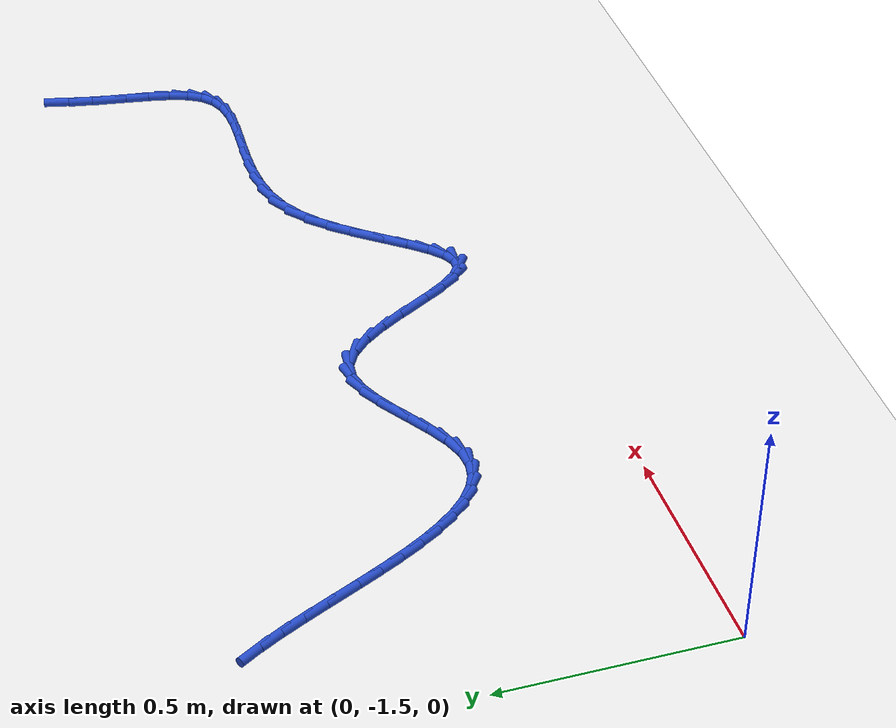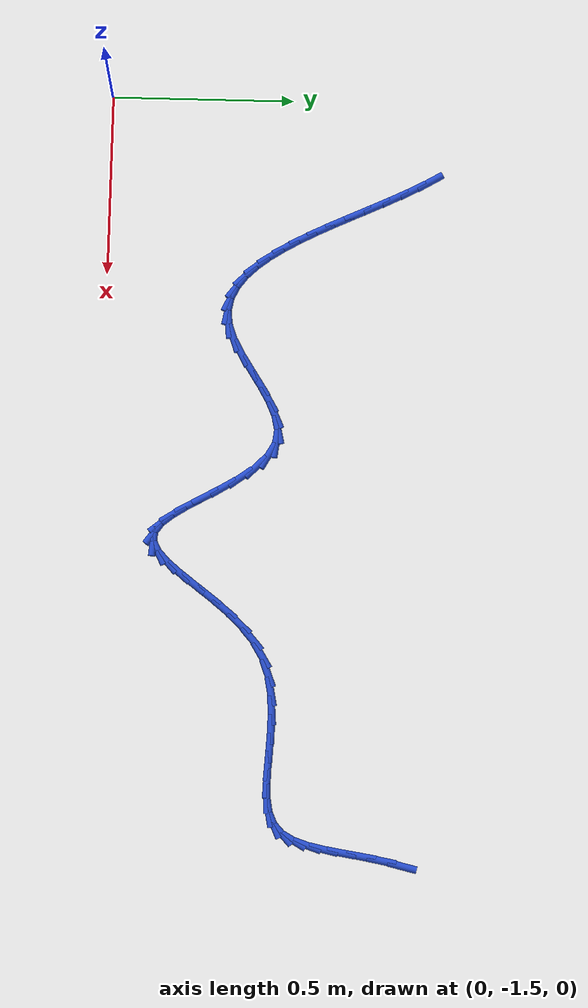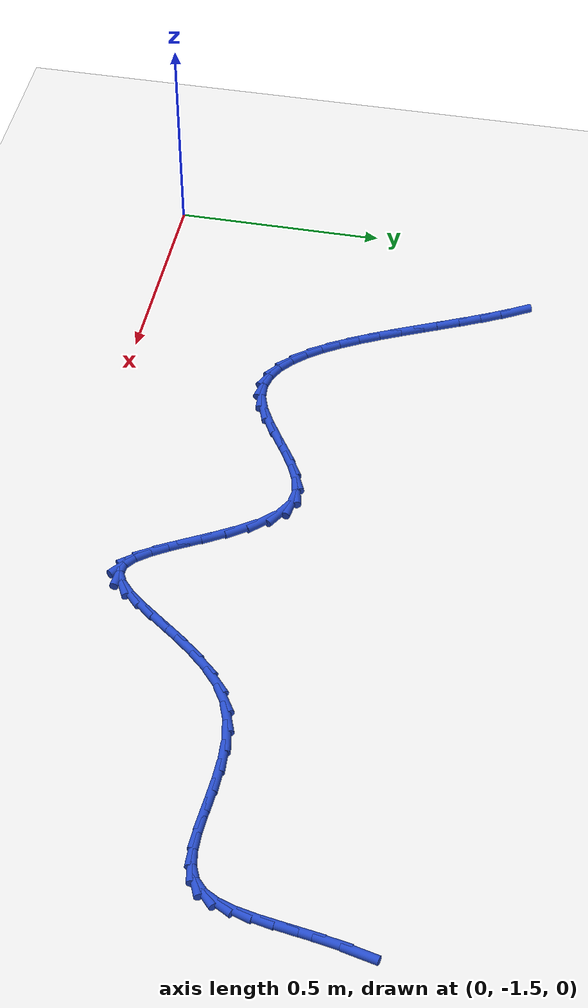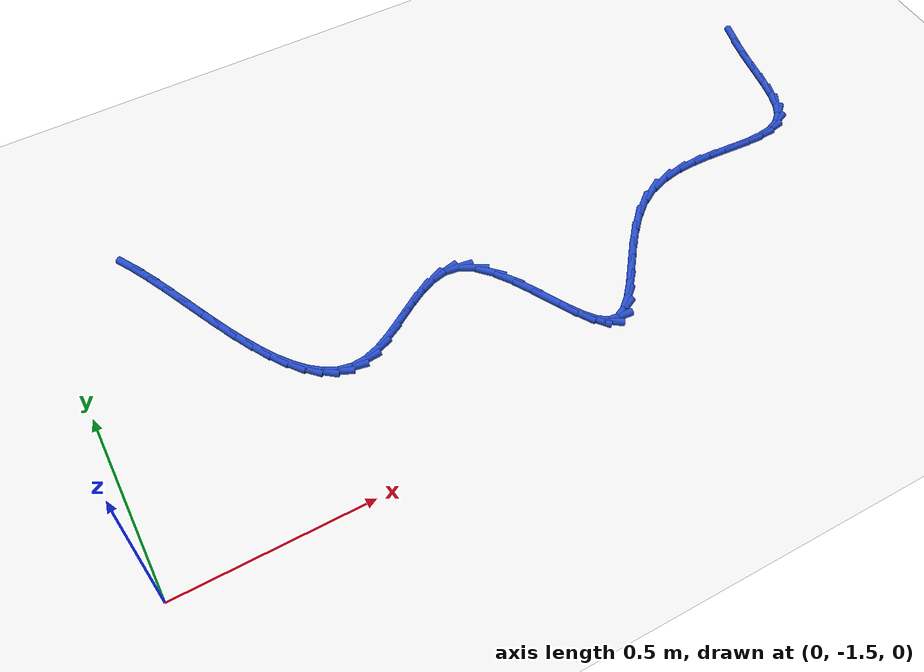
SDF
<sdf version="1.6">
 <world name="default">
  <model name="ground_plane">
   <static>1</static>
   <link name="link">
    <collision name="collision">
     <geometry><plane><normal>0 0 1</normal><size>100 100</size></plane></geometry>
     <surface><friction><ode><mu>100</mu><mu2>50</mu2></ode></friction></surface>
    </collision>
    <visual name="visual">
     <cast_shadows>0</cast_shadows>
     <geometry><plane><normal>0 0 1</normal><size>100 100</size></plane></geometry>
     <material>
      <script><uri>file://media/materials/scripts/gazebo.material</uri><name>Gazebo/WhiteGlow</name></script>
     </material>
    </visual>
   </link>
  </model>
  <model name="line">
   <link name="link_105">
    <pose>2.0947467023715998 -0.6598124246882727 0.01 0 1.57 1.337817415205101</pose>
    <collision name="collision">
     <geometry><cylinder><radius>0.01</radius><length>0.08</length></cylinder></geometry>
    </collision>
    <visual name="visual">
     <material>
      <script><name>Gazebo/Blue</name><uri>file://media/materials/scripts/gazebo.material</uri></script>
     </material>
     <geometry><cylinder><radius>0.01</radius><length>0.08</length></cylinder></geometry>
    </visual>
   </link>
   <link name="link_106">
    <pose>2.0815691052254004 -0.7153466650498067 0.01 0 1.57 1.3899009438252412</pose>
    <collision name="collision">
     <geometry><cylinder><radius>0.01</radius><length>0.08</length></cylinder></geometry>
    </collision>
    <visual name="visual">
     <material>
      <script><name>Gazebo/Blue</name><uri>file://media/materials/scripts/gazebo.material</uri></script>
     </material>
     <geometry><cylinder><radius>0.01</radius><length>0.08</length></cylinder></geometry>
    </visual>
   </link>
   <link name="link_107">
    <pose>2.0715976688186784 -0.7698667564846655 0.01 0 1.57 1.4150275496613802</pose>
    <collision name="collision">
     <geometry><cylinder><radius>0.01</radius><length>0.08</length></cylinder></geometry>
    </collision>
    <visual name="visual">
     <material>
      <script><name>Gazebo/Blue</name><uri>file://media/materials/scripts/gazebo.material</uri></script>
     </material>
     <geometry><cylinder><radius>0.01</radius><length>0.08</length></cylinder></geometry>
    </visual>
   </link>
   <link name="link_108">
    <pose>2.0633834907725963 -0.8221727092541795 0.01 0 1.57 1.4065531559114894</pose>
    <collision name="collision">
     <geometry><cylinder><radius>0.01</radius><length>0.08</length></cylinder></geometry>
    </collision>
    <visual name="visual">
     <material>
      <script><name>Gazebo/Blue</name><uri>file://media/materials/scripts/gazebo.material</uri></script>
     </material>
     <geometry><cylinder><radius>0.01</radius><length>0.08</length></cylinder></geometry>
    </visual>
   </link>
   <link name="link_109">
    <pose>2.0552958001406925 -0.8709713012392972 0.01 0 1.57 1.3561456328638886</pose>
    <collision name="collision">
     <geometry><cylinder><radius>0.01</radius><length>0.08</length></cylinder></geometry>
    </collision>
    <visual name="visual">
     <material>
      <script><name>Gazebo/Blue</name><uri>file://media/materials/scripts/gazebo.material</uri></script>
     </material>
     <geometry><cylinder><radius>0.01</radius><length>0.08</length></cylinder></geometry>
    </visual>
   </link>
   <link name="link_110">
    <pose>2.0457038259765072 -0.9149693103209663 0.01 0 1.57 1.2468559415411244</pose>
    <collision name="collision">
     <geometry><cylinder><radius>0.01</radius><length>0.08</length></cylinder></geometry>
    </collision>
    <visual name="visual">
     <material>
      <script><name>Gazebo/Blue</name><uri>file://media/materials/scripts/gazebo.material</uri></script>
     </material>
     <geometry><cylinder><radius>0.01</radius><length>0.08</length></cylinder></geometry>
    </visual>
   </link>
   <link name="link_111">
    <pose>2.032976797333579 -0.9528735143801357 0.01 0 1.57 1.050305777441004</pose>
    <collision name="collision">
     <geometry><cylinder><radius>0.01</radius><length>0.08</length></cylinder></geometry>
    </collision>
    <visual name="visual">
     <material>
      <script><name>Gazebo/Blue</name><uri>file://media/materials/scripts/gazebo.material</uri></script>
     </material>
     <geometry><cylinder><radius>0.01</radius><length>0.08</length></cylinder></geometry>
    </visual>
   </link>
   <link name="link_112">
    <pose>2.015483943265447 -0.9833906912977544 0.01 0 1.57 0.7419404314457281</pose>
    <collision name="collision">
     <geometry><cylinder><radius>0.01</radius><length>0.08</length></cylinder></geometry>
    </collision>
    <visual name="visual">
     <material>
      <script><name>Gazebo/Blue</name><uri>file://media/materials/scripts/gazebo.material</uri></script>
     </material>
     <geometry><cylinder><radius>0.01</radius><length>0.08</length></cylinder></geometry>
    </visual>
   </link>
   <link name="link_113">
    <pose>1.9916237833637478 -1.005262204354137 0.01 0 1.57 0.4078911897930684</pose>
    <collision name="collision">
     <geometry><cylinder><radius>0.01</radius><length>0.08</length></cylinder></geometry>
    </collision>
    <visual name="visual">
     <material>
      <script><name>Gazebo/Blue</name><uri>file://media/materials/scripts/gazebo.material</uri></script>
     </material>
     <geometry><cylinder><radius>0.01</radius><length>0.08</length></cylinder></geometry>
    </visual>
   </link>
   <link name="link_114">
    <pose>1.9609027277672677 -1.0185375811556603 0.01 0 1.57 0.1730591585537351</pose>
    <collision name="collision">
     <geometry><cylinder><radius>0.01</radius><length>0.08</length></cylinder></geometry>
    </collision>
    <visual name="visual">
     <material>
      <script><name>Gazebo/Blue</name><uri>file://media/materials/scripts/gazebo.material</uri></script>
     </material>
     <geometry><cylinder><radius>0.01</radius><length>0.08</length></cylinder></geometry>
    </visual>
   </link>
   <link name="link_115">
    <pose>1.9242488183485127 -1.0249449699302307 0.01 0 1.57 0.033132524588200304</pose>
    <collision name="collision">
     <geometry><cylinder><radius>0.01</radius><length>0.08</length></cylinder></geometry>
    </collision>
    <visual name="visual">
     <material>
      <script><name>Gazebo/Blue</name><uri>file://media/materials/scripts/gazebo.material</uri></script>
     </material>
     <geometry><cylinder><radius>0.01</radius><length>0.08</length></cylinder></geometry>
    </visual>
   </link>
   <link name="link_116">
    <pose>1.882683361270145 -1.0263226426157082 0.01 0 1.57 -0.039880803341258396</pose>
    <collision name="collision">
     <geometry><cylinder><radius>0.01</radius><length>0.08</length></cylinder></geometry>
    </collision>
    <visual name="visual">
     <material>
      <script><name>Gazebo/Blue</name><uri>file://media/materials/scripts/gazebo.material</uri></script>
     </material>
     <geometry><cylinder><radius>0.01</radius><length>0.08</length></cylinder></geometry>
    </visual>
   </link>
   <link name="link_117">
    <pose>1.8372276626948254 -1.0245088711499535 0.01 0 1.57 -0.0654411894701451</pose>
    <collision name="collision">
     <geometry><cylinder><radius>0.01</radius><length>0.08</length></cylinder></geometry>
    </collision>
    <visual name="visual">
     <material>
      <script><name>Gazebo/Blue</name><uri>file://media/materials/scripts/gazebo.material</uri></script>
     </material>
     <geometry><cylinder><radius>0.01</radius><length>0.08</length></cylinder></geometry>
    </visual>
   </link>
   <link name="link_118">
    <pose>1.7889030287852148 -1.0213419274708275 0.01 0 1.57 -0.05340189932912155</pose>
    <collision name="collision">
     <geometry><cylinder><radius>0.01</radius><length>0.08</length></cylinder></geometry>
    </collision>
    <visual name="visual">
     <material>
      <script><name>Gazebo/Blue</name><uri>file://media/materials/scripts/gazebo.material</uri></script>
     </material>
     <geometry><cylinder><radius>0.01</radius><length>0.08</length></cylinder></geometry>
    </visual>
   </link>
   <link name="link_119">
    <pose>1.7387307657039743 -1.0186600835161905 0.01 0 1.57 -0.0070289475880767685</pose>
    <collision name="collision">
     <geometry><cylinder><radius>0.01</radius><length>0.08</length></cylinder></geometry>
    </collision>
    <visual name="visual">
     <material>
      <script><name>Gazebo/Blue</name><uri>file://media/materials/scripts/gazebo.material</uri></script>
     </material>
     <geometry><cylinder><radius>0.01</radius><length>0.08</length></cylinder></geometry>
    </visual>
   </link>
   <link name="link_120">
    <pose>1.6877321796137643 -1.0183016112239038 0.01 0 1.57 0.07472089540415067</pose>
    <collision name="collision">
     <geometry><cylinder><radius>0.01</radius><length>0.08</length></cylinder></geometry>
    </collision>
    <visual name="visual">
     <material>
      <script><name>Gazebo/Blue</name><uri>file://media/materials/scripts/gazebo.material</uri></script>
     </material>
     <geometry><cylinder><radius>0.01</radius><length>0.08</length></cylinder></geometry>
    </visual>
   </link>
   <link name="link_121">
    <pose>1.6369285766772486 -1.0221047825318275 0.01 0 1.57 0.19517673771396346</pose>
    <collision name="collision">
     <geometry><cylinder><radius>0.01</radius><length>0.08</length></cylinder></geometry>
    </collision>
    <visual name="visual">
     <material>
      <script><name>Gazebo/Blue</name><uri>file://media/materials/scripts/gazebo.material</uri></script>
     </material>
     <geometry><cylinder><radius>0.01</radius><length>0.08</length></cylinder></geometry>
    </visual>
   </link>
   <link name="link_122">
    <pose>1.5873412630570864 -1.0319078693778225 0.01 0 1.57 0.3566420796972951</pose>
    <collision name="collision">
     <geometry><cylinder><radius>0.01</radius><length>0.08</length></cylinder></geometry>
    </collision>
    <visual name="visual">
     <material>
      <script><name>Gazebo/Blue</name><uri>file://media/materials/scripts/gazebo.material</uri></script>
     </material>
     <geometry><cylinder><radius>0.01</radius><length>0.08</length></cylinder></geometry>
    </visual>
   </link>
   <link name="link_123">
    <pose>1.539991544915939 -1.0495491436997488 0.01 0 1.57 0.5500811939517721</pose>
    <collision name="collision">
     <geometry><cylinder><radius>0.01</radius><length>0.08</length></cylinder></geometry>
    </collision>
    <visual name="visual">
     <material>
      <script><name>Gazebo/Blue</name><uri>file://media/materials/scripts/gazebo.material</uri></script>
     </material>
     <geometry><cylinder><radius>0.01</radius><length>0.08</length></cylinder></geometry>
    </visual>
   </link>
   <link name="link_124">
    <pose>1.4958329908532295 -1.0766279168074895 0.01 0 1.57 0.7146241138238814</pose>
    <collision name="collision">
     <geometry><cylinder><radius>0.01</radius><length>0.08</length></cylinder></geometry>
    </collision>
    <visual name="visual">
     <material>
      <script><name>Gazebo/Blue</name><uri>file://media/materials/scripts/gazebo.material</uri></script>
     </material>
     <geometry><cylinder><radius>0.01</radius><length>0.08</length></cylinder></geometry>
    </visual>
   </link>
   <link name="link_125">
    <pose>1.4550457269598063 -1.1120149946039257 0.01 0 1.57 0.8248491574230727</pose>
    <collision name="collision">
     <geometry><cylinder><radius>0.01</radius><length>0.08</length></cylinder></geometry>
    </collision>
    <visual name="visual">
     <material>
      <script><name>Gazebo/Blue</name><uri>file://media/materials/scripts/gazebo.material</uri></script>
     </material>
     <geometry><cylinder><radius>0.01</radius><length>0.08</length></cylinder></geometry>
    </visual>
   </link>
   <link name="link_126">
    <pose>1.4173174555390369 -1.152844039051978 0.01 0 1.57 0.8920186334259969</pose>
    <collision name="collision">
     <geometry><cylinder><radius>0.01</radius><length>0.08</length></cylinder></geometry>
    </collision>
    <visual name="visual">
     <material>
      <script><name>Gazebo/Blue</name><uri>file://media/materials/scripts/gazebo.material</uri></script>
     </material>
     <geometry><cylinder><radius>0.01</radius><length>0.08</length></cylinder></geometry>
    </visual>
   </link>
   <link name="link_127">
    <pose>1.382327962079821 -1.1962207836378564 0.01 0 1.57 0.9228733148067014</pose>
    <collision name="collision">
     <geometry><cylinder><radius>0.01</radius><length>0.08</length></cylinder></geometry>
    </collision>
    <visual name="visual">
     <material>
      <script><name>Gazebo/Blue</name><uri>file://media/materials/scripts/gazebo.material</uri></script>
     </material>
     <geometry><cylinder><radius>0.01</radius><length>0.08</length></cylinder></geometry>
    </visual>
   </link>
   <link name="link_128">
    <pose>1.3497570320710577 -1.2392509618477734 0.01 0 1.57 0.9172295614932648</pose>
    <collision name="collision">
     <geometry><cylinder><radius>0.01</radius><length>0.08</length></cylinder></geometry>
    </collision>
    <visual name="visual">
     <material>
      <script><name>Gazebo/Blue</name><uri>file://media/materials/scripts/gazebo.material</uri></script>
     </material>
     <geometry><cylinder><radius>0.01</radius><length>0.08</length></cylinder></geometry>
    </visual>
   </link>
   <link name="link_129">
    <pose>1.319284451001645 -1.2790403071679404 0.01 0 1.57 0.8647803697820357</pose>
    <collision name="collision">
     <geometry><cylinder><radius>0.01</radius><length>0.08</length></cylinder></geometry>
    </collision>
    <visual name="visual">
     <material>
      <script><name>Gazebo/Blue</name><uri>file://media/materials/scripts/gazebo.material</uri></script>
     </material>
     <geometry><cylinder><radius>0.01</radius><length>0.08</length></cylinder></geometry>
    </visual>
   </link>
   <link name="link_130">
    <pose>1.290590004360482 -1.3126945530845686 0.01 0 1.57 0.7350824744060267</pose>
    <collision name="collision">
     <geometry><cylinder><radius>0.01</radius><length>0.08</length></cylinder></geometry>
    </collision>
    <visual name="visual">
     <material>
      <script><name>Gazebo/Blue</name><uri>file://media/materials/scripts/gazebo.material</uri></script>
     </material>
     <geometry><cylinder><radius>0.01</radius><length>0.08</length></cylinder></geometry>
    </visual>
   </link>
   <link name="link_131">
    <pose>1.2633534776364663 -1.3373194330838702 0.01 0 1.57 0.45291862024788077</pose>
    <collision name="collision">
     <geometry><cylinder><radius>0.01</radius><length>0.08</length></cylinder></geometry>
    </collision>
    <visual name="visual">
     <material>
      <script><name>Gazebo/Blue</name><uri>file://media/materials/scripts/gazebo.material</uri></script>
     </material>
     <geometry><cylinder><radius>0.01</radius><length>0.08</length></cylinder></geometry>
    </visual>
   </link>
   <link name="link_132">
    <pose>1.2372546563184987 -1.3500206806520558 0.01 0 1.57 -0.08325390971960991</pose>
    <collision name="collision">
     <geometry><cylinder><radius>0.01</radius><length>0.08</length></cylinder></geometry>
    </collision>
    <visual name="visual">
     <material>
      <script><name>Gazebo/Blue</name><uri>file://media/materials/scripts/gazebo.material</uri></script>
     </material>
     <geometry><cylinder><radius>0.01</radius><length>0.08</length></cylinder></geometry>
    </visual>
   </link>
   <link name="link_133">
    <pose>1.211973257190281 -1.3479110289288878 0.01 0 1.57 -0.6284696115308049</pose>
    <collision name="collision">
     <geometry><cylinder><radius>0.01</radius><length>0.08</length></cylinder></geometry>
    </collision>
    <visual name="visual">
     <material>
      <script><name>Gazebo/Blue</name><uri>file://media/materials/scripts/gazebo.material</uri></script>
     </material>
     <geometry><cylinder><radius>0.01</radius><length>0.08</length></cylinder></geometry>
    </visual>
   </link>
   <link name="link_134">
    <pose>1.187171500282988 -1.3298857721250545 0.01 0 1.57 -0.8966094358869354</pose>
    <collision name="collision">
     <geometry><cylinder><radius>0.01</radius><length>0.08</length></cylinder></geometry>
    </collision>
    <visual name="visual">
     <material>
      <script><name>Gazebo/Blue</name><uri>file://media/materials/scripts/gazebo.material</uri></script>
     </material>
     <geometry><cylinder><radius>0.01</radius><length>0.08</length></cylinder></geometry>
    </visual>
   </link>
   <link name="link_135">
    <pose>1.1624710197156913 -1.2989750784404617 0.01 0 1.57 -1.0145257846455393</pose>
    <collision name="collision">
     <geometry><cylinder><radius>0.01</radius><length>0.08</length></cylinder></geometry>
    </collision>
    <visual name="visual">
     <material>
      <script><name>Gazebo/Blue</name><uri>file://media/materials/scripts/gazebo.material</uri></script>
     </material>
     <geometry><cylinder><radius>0.01</radius><length>0.08</length></cylinder></geometry>
    </visual>
   </link>
   <link name="link_136">
    <pose>1.1374877097989413 -1.2587938851179297 0.01 0 1.57 -1.060612622380991</pose>
    <collision name="collision">
     <geometry><cylinder><radius>0.01</radius><length>0.08</length></cylinder></geometry>
    </collision>
    <visual name="visual">
     <material>
      <script><name>Gazebo/Blue</name><uri>file://media/materials/scripts/gazebo.material</uri></script>
     </material>
     <geometry><cylinder><radius>0.01</radius><length>0.08</length></cylinder></geometry>
    </visual>
   </link>
   <link name="link_137">
    <pose>1.1118374648432856 -1.2129571294002752 0.01 0 1.57 -1.0620595139340596</pose>
    <collision name="collision">
     <geometry><cylinder><radius>0.01</radius><length>0.08</length></cylinder></geometry>
    </collision>
    <visual name="visual">
     <material>
      <script><name>Gazebo/Blue</name><uri>file://media/materials/scripts/gazebo.material</uri></script>
     </material>
     <geometry><cylinder><radius>0.01</radius><length>0.08</length></cylinder></geometry>
    </visual>
   </link>
   <link name="link_138">
    <pose>1.085136179159274 -1.1650797485303193 0.01 0 1.57 -1.02476493263243</pose>
    <collision name="collision">
     <geometry><cylinder><radius>0.01</radius><length>0.08</length></cylinder></geometry>
    </collision>
    <visual name="visual">
     <material>
      <script><name>Gazebo/Blue</name><uri>file://media/materials/scripts/gazebo.material</uri></script>
     </material>
     <geometry><cylinder><radius>0.01</radius><length>0.08</length></cylinder></geometry>
    </visual>
   </link>
   <link name="link_139">
    <pose>1.0569997470574548 -1.11877667975088 0.01 0 1.57 -0.941130011813172</pose>
    <collision name="collision">
     <geometry><cylinder><radius>0.01</radius><length>0.08</length></cylinder></geometry>
    </collision>
    <visual name="visual">
     <material>
      <script><name>Gazebo/Blue</name><uri>file://media/materials/scripts/gazebo.material</uri></script>
     </material>
     <geometry><cylinder><radius>0.01</radius><length>0.08</length></cylinder></geometry>
    </visual>
   </link>
   <link name="link_140">
    <pose>1.027044062848377 -1.0776628603047764 0.01 0 1.57 -0.7877340356728169</pose>
    <collision name="collision">
     <geometry><cylinder><radius>0.01</radius><length>0.08</length></cylinder></geometry>
    </collision>
    <visual name="visual">
     <material>
      <script><name>Gazebo/Blue</name><uri>file://media/materials/scripts/gazebo.material</uri></script>
     </material>
     <geometry><cylinder><radius>0.01</radius><length>0.08</length></cylinder></geometry>
    </visual>
   </link>
   <link name="link_141">
    <pose>0.9948850208425886 -1.0453532274348263 0.01 0 1.57 -0.519913000458852</pose>
    <collision name="collision">
     <geometry><cylinder><radius>0.01</radius><length>0.08</length></cylinder></geometry>
    </collision>
    <visual name="visual">
     <material>
      <script><name>Gazebo/Blue</name><uri>file://media/materials/scripts/gazebo.material</uri></script>
     </material>
     <geometry><cylinder><radius>0.01</radius><length>0.08</length></cylinder></geometry>
    </visual>
   </link>
   <link name="link_142">
    <pose>0.960138515350638 -1.0254627183838494 0.01 0 1.57 -0.12244777602159136</pose>
    <collision name="collision">
     <geometry><cylinder><radius>0.01</radius><length>0.08</length></cylinder></geometry>
    </collision>
    <visual name="visual">
     <material>
      <script><name>Gazebo/Blue</name><uri>file://media/materials/scripts/gazebo.material</uri></script>
     </material>
     <geometry><cylinder><radius>0.01</radius><length>0.08</length></cylinder></geometry>
    </visual>
   </link>
   <link name="link_143">
    <pose>0.9225386936775429 -1.0208355549659112 0.01 0 1.57 0.21643511873022736</pose>
    <collision name="collision">
     <geometry><cylinder><radius>0.01</radius><length>0.08</length></cylinder></geometry>
    </collision>
    <visual name="visual">
     <material>
      <script><name>Gazebo/Blue</name><uri>file://media/materials/scripts/gazebo.material</uri></script>
     </material>
     <geometry><cylinder><radius>0.01</radius><length>0.08</length></cylinder></geometry>
    </visual>
   </link>
   <link name="link_144">
    <pose>0.8825385672976287 -1.0296307524262083 0.01 0 1.57 0.42007820716076955</pose>
    <collision name="collision">
     <geometry><cylinder><radius>0.01</radius><length>0.08</length></cylinder></geometry>
    </collision>
    <visual name="visual">
     <material>
      <script><name>Gazebo/Blue</name><uri>file://media/materials/scripts/gazebo.material</uri></script>
     </material>
     <geometry><cylinder><radius>0.01</radius><length>0.08</length></cylinder></geometry>
    </visual>
   </link>
   <link name="link_145">
    <pose>0.8408613031888373 -1.048246584003049 0.01 0 1.57 0.5274378322706853</pose>
    <collision name="collision">
     <geometry><cylinder><radius>0.01</radius><length>0.08</length></cylinder></geometry>
    </collision>
    <visual name="visual">
     <material>
      <script><name>Gazebo/Blue</name><uri>file://media/materials/scripts/gazebo.material</uri></script>
     </material>
     <geometry><cylinder><radius>0.01</radius><length>0.08</length></cylinder></geometry>
    </visual>
   </link>
   <link name="link_146">
    <pose>0.7982305535630915 -1.0730781604159645 0.01 0 1.57 0.5695061432879309</pose>
    <collision name="collision">
     <geometry><cylinder><radius>0.01</radius><length>0.08</length></cylinder></geometry>
    </collision>
    <visual name="visual">
     <material>
      <script><name>Gazebo/Blue</name><uri>file://media/materials/scripts/gazebo.material</uri></script>
     </material>
     <geometry><cylinder><radius>0.01</radius><length>0.08</length></cylinder></geometry>
    </visual>
   </link>
   <link name="link_147">
    <pose>0.7553699706323133 -1.1005205923844856 0.01 0 1.57 0.5580758716759747</pose>
    <collision name="collision">
     <geometry><cylinder><radius>0.01</radius><length>0.08</length></cylinder></geometry>
    </collision>
    <visual name="visual">
     <material>
      <script><name>Gazebo/Blue</name><uri>file://media/materials/scripts/gazebo.material</uri></script>
     </material>
     <geometry><cylinder><radius>0.01</radius><length>0.08</length></cylinder></geometry>
    </visual>
   </link>
   <link name="link_148">
    <pose>0.7130032066084245 -1.1269689906281444 0.01 0 1.57 0.488123805411929</pose>
    <collision name="collision">
     <geometry><cylinder><radius>0.01</radius><length>0.08</length></cylinder></geometry>
    </collision>
    <visual name="visual">
     <material>
      <script><name>Gazebo/Blue</name><uri>file://media/materials/scripts/gazebo.material</uri></script>
     </material>
     <geometry><cylinder><radius>0.01</radius><length>0.08</length></cylinder></geometry>
    </visual>
   </link>
   <link name="link_149">
    <pose>0.6718539137033493 -1.1488184658664706 0.01 0 1.57 0.33504980889804814</pose>
    <collision name="collision">
     <geometry><cylinder><radius>0.01</radius><length>0.08</length></cylinder></geometry>
    </collision>
    <visual name="visual">
     <material>
      <script><name>Gazebo/Blue</name><uri>file://media/materials/scripts/gazebo.material</uri></script>
     </material>
     <geometry><cylinder><radius>0.01</radius><length>0.08</length></cylinder></geometry>
    </visual>
   </link>
   <link name="link_150">
    <pose>0.6326444895440902 -1.1624702840120924 0.01 0 1.57 0.08549295684639963</pose>
    <collision name="collision">
     <geometry><cylinder><radius>0.01</radius><length>0.08</length></cylinder></geometry>
    </collision>
    <visual name="visual">
     <material>
      <script><name>Gazebo/Blue</name><uri>file://media/materials/scripts/gazebo.material</uri></script>
     </material>
     <geometry><cylinder><radius>0.01</radius><length>0.08</length></cylinder></geometry>
    </visual>
   </link>
   <link name="link_151">
    <pose>0.5958324746430496 -1.1656251420953208 0.01 0 1.57 -0.19281001388461352</pose>
    <collision name="collision">
     <geometry><cylinder><radius>0.01</radius><length>0.08</length></cylinder></geometry>
    </collision>
    <visual name="visual">
     <material>
      <script><name>Gazebo/Blue</name><uri>file://media/materials/scripts/gazebo.material</uri></script>
     </material>
     <geometry><cylinder><radius>0.01</radius><length>0.08</length></cylinder></geometry>
    </visual>
   </link>
   <link name="link_152">
    <pose>0.561285024883408 -1.1588802580111845 0.01 0 1.57 -0.448970908219471</pose>
    <collision name="collision">
     <geometry><cylinder><radius>0.01</radius><length>0.08</length></cylinder></geometry>
    </collision>
    <visual name="visual">
     <material>
      <script><name>Gazebo/Blue</name><uri>file://media/materials/scripts/gazebo.material</uri></script>
     </material>
     <geometry><cylinder><radius>0.01</radius><length>0.08</length></cylinder></geometry>
    </visual>
   </link>
   <link name="link_153">
    <pose>0.528789497879096 -1.143224352651931 0.01 0 1.57 -0.655623435250972</pose>
    <collision name="collision">
     <geometry><cylinder><radius>0.01</radius><length>0.08</length></cylinder></geometry>
    </collision>
    <visual name="visual">
     <material>
      <script><name>Gazebo/Blue</name><uri>file://media/materials/scripts/gazebo.material</uri></script>
     </material>
     <geometry><cylinder><radius>0.01</radius><length>0.08</length></cylinder></geometry>
    </visual>
   </link>
   <link name="link_154">
    <pose>0.49813325124404373 -1.1196461469098071 0.01 0 1.57 -0.8102862361065694</pose>
    <collision name="collision">
     <geometry><cylinder><radius>0.01</radius><length>0.08</length></cylinder></geometry>
    </collision>
    <visual name="visual">
     <material>
      <script><name>Gazebo/Blue</name><uri>file://media/materials/scripts/gazebo.material</uri></script>
     </material>
     <geometry><cylinder><radius>0.01</radius><length>0.08</length></cylinder></geometry>
    </visual>
   </link>
   <link name="link_155">
    <pose>0.4691036425921826 -1.089134361677062 0.01 0 1.57 -0.9225176079083554</pose>
    <collision name="collision">
     <geometry><cylinder><radius>0.01</radius><length>0.08</length></cylinder></geometry>
    </collision>
    <visual name="visual">
     <material>
      <script><name>Gazebo/Blue</name><uri>file://media/materials/scripts/gazebo.material</uri></script>
     </material>
     <geometry><cylinder><radius>0.01</radius><length>0.08</length></cylinder></geometry>
    </visual>
   </link>
   <link name="link_156">
    <pose>0.4414880295374428 -1.0526777178459417 0.01 0 1.57 -1.0030250337530697</pose>
    <collision name="collision">
     <geometry><cylinder><radius>0.01</radius><length>0.08</length></cylinder></geometry>
    </collision>
    <visual name="visual">
     <material>
      <script><name>Gazebo/Blue</name><uri>file://media/materials/scripts/gazebo.material</uri></script>
     </material>
     <geometry><cylinder><radius>0.01</radius><length>0.08</length></cylinder></geometry>
    </visual>
   </link>
   <link name="link_157">
    <pose>0.4150737696937548 -1.011264936308695 0.01 0 1.57 -1.0600960246931799</pose>
    <collision name="collision">
     <geometry><cylinder><radius>0.01</radius><length>0.08</length></cylinder></geometry>
    </collision>
    <visual name="visual">
     <material>
      <script><name>Gazebo/Blue</name><uri>file://media/materials/scripts/gazebo.material</uri></script>
     </material>
     <geometry><cylinder><radius>0.01</radius><length>0.08</length></cylinder></geometry>
    </visual>
   </link>
   <link name="link_158">
    <pose>0.38964822067504895 -0.9658847379575685 0.01 0 1.57 -1.0994032350577736</pose>
    <collision name="collision">
     <geometry><cylinder><radius>0.01</radius><length>0.08</length></cylinder></geometry>
    </collision>
    <visual name="visual">
     <material>
      <script><name>Gazebo/Blue</name><uri>file://media/materials/scripts/gazebo.material</uri></script>
     </material>
     <geometry><cylinder><radius>0.01</radius><length>0.08</length></cylinder></geometry>
    </visual>
   </link>
   <link name="link_159">
    <pose>0.3649987400952554 -0.917525843684809 0.01 0 1.57 -1.1245912032036223</pose>
    <collision name="collision">
     <geometry><cylinder><radius>0.01</radius><length>0.08</length></cylinder></geometry>
    </collision>
    <visual name="visual">
     <material>
      <script><name>Gazebo/Blue</name><uri>file://media/materials/scripts/gazebo.material</uri></script>
     </material>
     <geometry><cylinder><radius>0.01</radius><length>0.08</length></cylinder></geometry>
    </visual>
   </link>
   <link name="link_160">
    <pose>0.34091268556830573 -0.8671769743826662 0.01 0 1.57 -1.1378233644591054</pose>
    <collision name="collision">
     <geometry><cylinder><radius>0.01</radius><length>0.08</length></cylinder></geometry>
    </collision>
    <visual name="visual">
     <material>
      <script><name>Gazebo/Blue</name><uri>file://media/materials/scripts/gazebo.material</uri></script>
     </material>
     <geometry><cylinder><radius>0.01</radius><length>0.08</length></cylinder></geometry>
    </visual>
   </link>
   <link name="link_161">
    <pose>0.31717741470812977 -0.8158268509433865 0.01 0 1.57 -1.1401348243309493</pose>
    <collision name="collision">
     <geometry><cylinder><radius>0.01</radius><length>0.08</length></cylinder></geometry>
    </collision>
    <visual name="visual">
     <material>
      <script><name>Gazebo/Blue</name><uri>file://media/materials/scripts/gazebo.material</uri></script>
     </material>
     <geometry><cylinder><radius>0.01</radius><length>0.08</length></cylinder></geometry>
    </visual>
   </link>
   <link name="link_162">
    <pose>0.293580285128658 -0.7644641942592173 0.01 0 1.57 -1.1315981677638673</pose>
    <collision name="collision">
     <geometry><cylinder><radius>0.01</radius><length>0.08</length></cylinder></geometry>
    </collision>
    <visual name="visual">
     <material>
      <script><name>Gazebo/Blue</name><uri>file://media/materials/scripts/gazebo.material</uri></script>
     </material>
     <geometry><cylinder><radius>0.01</radius><length>0.08</length></cylinder></geometry>
    </visual>
   </link>
   <link name="link_163">
    <pose>0.2699086544438212 -0.7140777252224062 0.01 0 1.57 -1.1113209140950087</pose>
    <collision name="collision">
     <geometry><cylinder><radius>0.01</radius><length>0.08</length></cylinder></geometry>
    </collision>
    <visual name="visual">
     <material>
      <script><name>Gazebo/Blue</name><uri>file://media/materials/scripts/gazebo.material</uri></script>
     </material>
     <geometry><cylinder><radius>0.01</radius><length>0.08</length></cylinder></geometry>
    </visual>
   </link>
   <link name="link_164">
    <pose>0.2459498802675497 -0.665656164725201 0.01 0 1.57 -1.077834913728143</pose>
    <collision name="collision">
     <geometry><cylinder><radius>0.01</radius><length>0.08</length></cylinder></geometry>
    </collision>
    <visual name="visual">
     <material>
      <script><name>Gazebo/Blue</name><uri>file://media/materials/scripts/gazebo.material</uri></script>
     </material>
     <geometry><cylinder><radius>0.01</radius><length>0.08</length></cylinder></geometry>
    </visual>
   </link>
   <link name="link_165">
    <pose>0.22150542255903585 -0.620152547318579 0.01 0 1.57 -1.0415995749560263</pose>
    <collision name="collision">
     <geometry><cylinder><radius>0.01</radius><length>0.08</length></cylinder></geometry>
    </collision>
    <visual name="visual">
     <material>
      <script><name>Gazebo/Blue</name><uri>file://media/materials/scripts/gazebo.material</uri></script>
     </material>
     <geometry><cylinder><radius>0.01</radius><length>0.08</length></cylinder></geometry>
    </visual>
   </link>
  </model>
 </world>
</sdf>
